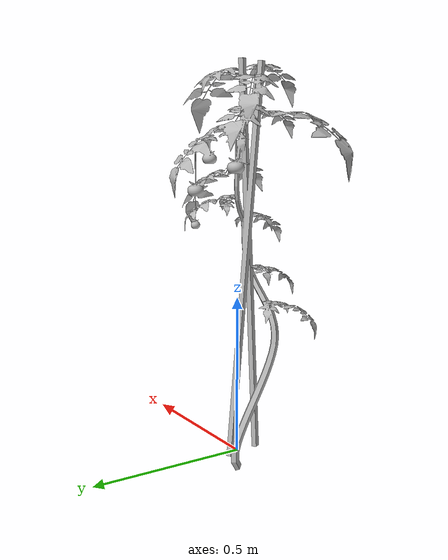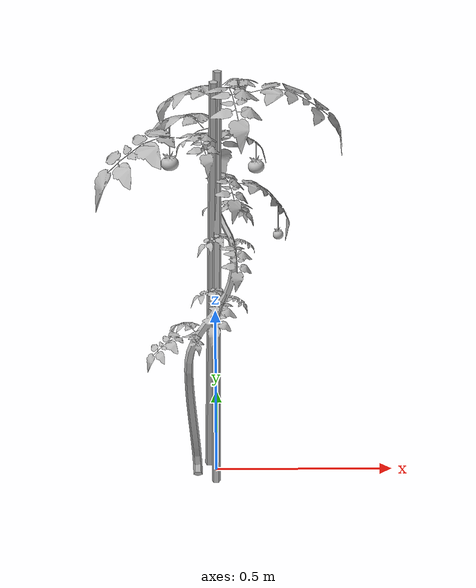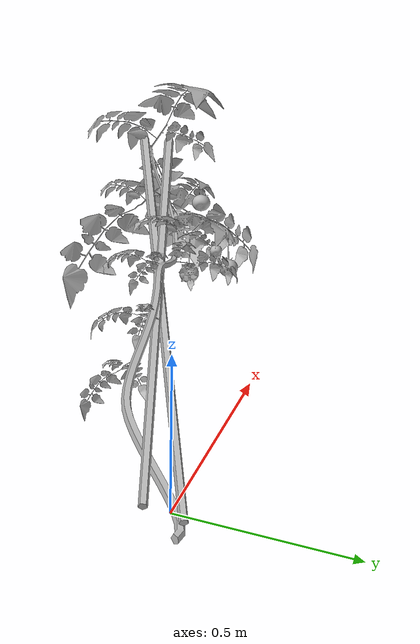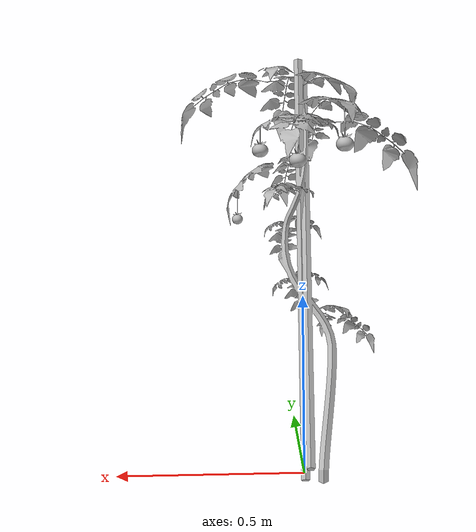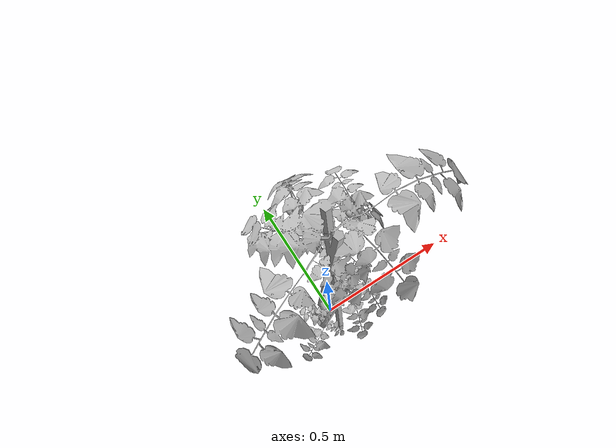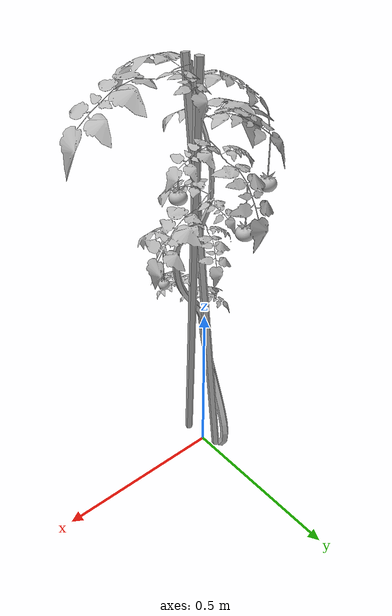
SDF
<?xml version="1.0"?>
<sdf version="1.6">
    <model name="tomato_plant_3">
  <static>true</static>
      <link name="tomato_plant_link">

        <inertial>
          <pose>0 0 0 0 0 0</pose>
          <mass>20</mass>
          <inertia>
            <ixx>0.2006</ixx>
            <ixy>0</ixy>
            <ixz>0</ixz>
            <iyy>0.2006</iyy>
            <iyz>0</iyz>
            <izz>0.4</izz>
          </inertia>
        </inertial>

        <visual name="visual">
          <pose>0 0 0 0 0 0</pose>
          <geometry>
            <mesh><uri>model://tomato_plant_3/meshes/tomato_plant_3.obj</uri></mesh>
          </geometry>
        </visual>

        <collision name="collision">
          <pose>0 0 0.01 0 0 0</pose>
       <geometry>
          <cylinder>
            <radius>0.2</radius>
            <length>0.02</length>
          </cylinder>
        </geometry>
        </collision>
      </link>

    </model>
</sdf>
